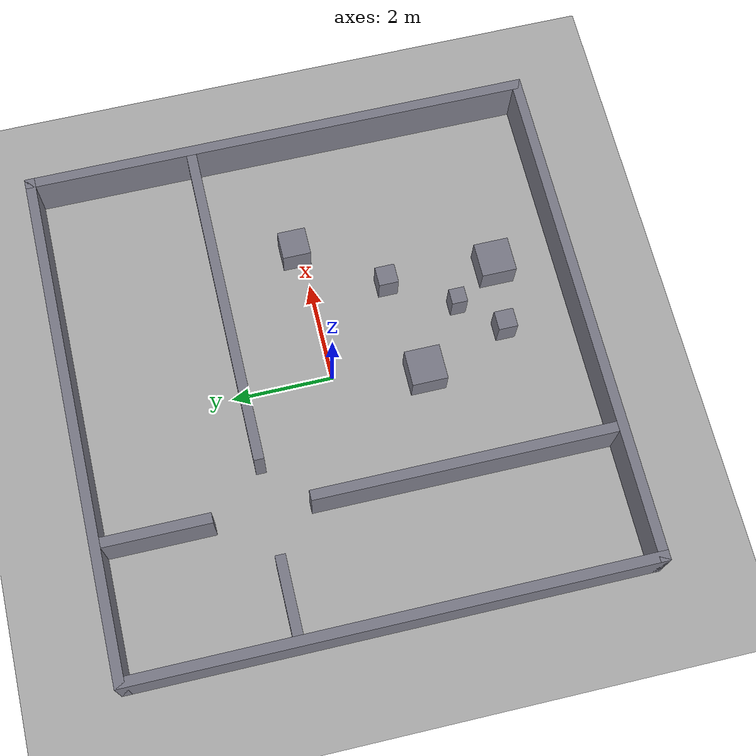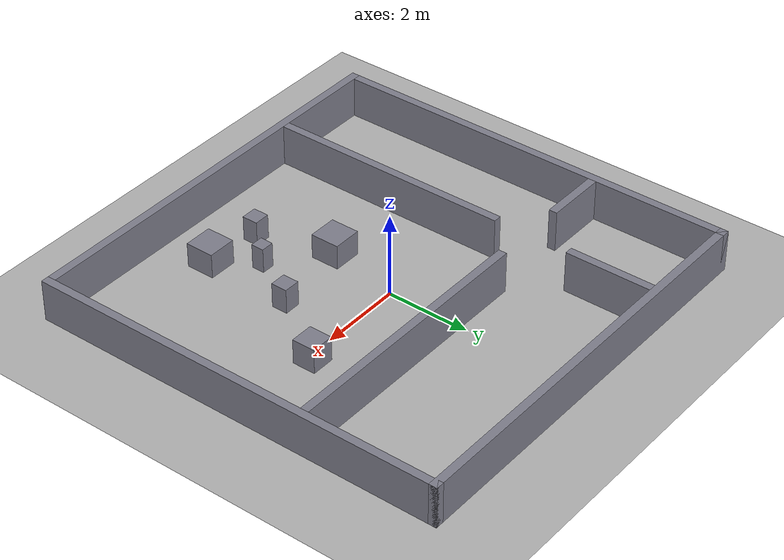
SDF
<?xml version="1.0"?>
<sdf version="1.10">
  <world name="scenario_11">
    <physics name="fast" type="ignored">
      <max_step_size>0.005</max_step_size>
      <real_time_factor>1.0</real_time_factor>
      <real_time_update_rate>200</real_time_update_rate>
    </physics>
    <plugin filename="gz-sim-physics-system" name="gz::sim::systems::Physics"/>
    <plugin filename="gz-sim-user-commands-system" name="gz::sim::systems::UserCommands"/>
    <plugin filename="gz-sim-scene-broadcaster-system" name="gz::sim::systems::SceneBroadcaster"/>
    <plugin filename="gz-sim-sensors-system" name="gz::sim::systems::Sensors">
      <render_engine>ogre2</render_engine>
    </plugin>
    <light type="directional" name="sun">
      <cast_shadows>false</cast_shadows>
      <pose>0 0 10 0 0 0</pose>
      <diffuse>0.9 0.9 0.9 1</diffuse>
      <direction>-0.5 0.2 -0.9</direction>
    </light>
    <model name="ground_plane">
      <static>true</static>
      <link name="link">
        <collision name="c"><geometry><plane><normal>0 0 1</normal><size>20 20</size></plane></geometry></collision>
        <visual name="v"><geometry><plane><normal>0 0 1</normal><size>20 20</size></plane></geometry>
          <material><ambient>0.7 0.7 0.7 1</ambient><diffuse>0.7 0.7 0.7 1</diffuse></material></visual>
      </link>
    </model>
    <model name="box_0">
      <static>true</static>
      <pose>0.0 5.0 0.5 0 0 0</pose>
      <link name="link">
        <collision name="c"><geometry><box><size>10.2 0.2 1.0</size></box></geometry></collision>
        <visual name="v"><geometry><box><size>10.2 0.2 1.0</size></box></geometry>
          <material><ambient>0.5 0.5 0.55 1</ambient><diffuse>0.5 0.5 0.55 1</diffuse></material></visual>
      </link>
    </model>
    <model name="box_1">
      <static>true</static>
      <pose>0.0 -5.0 0.5 0 0 0</pose>
      <link name="link">
        <collision name="c"><geometry><box><size>10.2 0.2 1.0</size></box></geometry></collision>
        <visual name="v"><geometry><box><size>10.2 0.2 1.0</size></box></geometry>
          <material><ambient>0.5 0.5 0.55 1</ambient><diffuse>0.5 0.5 0.55 1</diffuse></material></visual>
      </link>
    </model>
    <model name="box_2">
      <static>true</static>
      <pose>5.0 0.0 0.5 0 0 0</pose>
      <link name="link">
        <collision name="c"><geometry><box><size>0.2 10.2 1.0</size></box></geometry></collision>
        <visual name="v"><geometry><box><size>0.2 10.2 1.0</size></box></geometry>
          <material><ambient>0.5 0.5 0.55 1</ambient><diffuse>0.5 0.5 0.55 1</diffuse></material></visual>
      </link>
    </model>
    <model name="box_3">
      <static>true</static>
      <pose>-5.0 0.0 0.5 0 0 0</pose>
      <link name="link">
        <collision name="c"><geometry><box><size>0.2 10.2 1.0</size></box></geometry></collision>
        <visual name="v"><geometry><box><size>0.2 10.2 1.0</size></box></geometry>
          <material><ambient>0.5 0.5 0.55 1</ambient><diffuse>0.5 0.5 0.55 1</diffuse></material></visual>
      </link>
    </model>
    <model name="box_4">
      <static>true</static>
      <pose>-4.1535409893763 1.76 0.5 0 0 0</pose>
      <link name="link">
        <collision name="c"><geometry><box><size>1.4929180212474016 0.2 1.0</size></box></geometry></collision>
        <visual name="v"><geometry><box><size>1.4929180212474016 0.2 1.0</size></box></geometry>
          <material><ambient>0.5 0.5 0.55 1</ambient><diffuse>0.5 0.5 0.55 1</diffuse></material></visual>
      </link>
    </model>
    <model name="box_5">
      <static>true</static>
      <pose>1.6614590106237008 1.76 0.5 0 0 0</pose>
      <link name="link">
        <collision name="c"><geometry><box><size>6.477081978752599 0.2 1.0</size></box></geometry></collision>
        <visual name="v"><geometry><box><size>6.477081978752599 0.2 1.0</size></box></geometry>
          <material><ambient>0.5 0.5 0.55 1</ambient><diffuse>0.5 0.5 0.55 1</diffuse></material></visual>
      </link>
    </model>
    <model name="box_6">
      <static>true</static>
      <pose>-2.46 -1.956891279492765 0.5 0 0 0</pose>
      <link name="link">
        <collision name="c"><geometry><box><size>0.2 5.8862174410144705 1.0</size></box></geometry></collision>
        <visual name="v"><geometry><box><size>0.2 5.8862174410144705 1.0</size></box></geometry>
          <material><ambient>0.5 0.5 0.55 1</ambient><diffuse>0.5 0.5 0.55 1</diffuse></material></visual>
      </link>
    </model>
    <model name="box_7">
      <static>true</static>
      <pose>-2.46 3.8581087205072353 0.5 0 0 0</pose>
      <link name="link">
        <collision name="c"><geometry><box><size>0.2 2.08378255898553 1.0</size></box></geometry></collision>
        <visual name="v"><geometry><box><size>0.2 2.08378255898553 1.0</size></box></geometry>
          <material><ambient>0.5 0.5 0.55 1</ambient><diffuse>0.5 0.5 0.55 1</diffuse></material></visual>
      </link>
    </model>
    <model name="box_8">
      <static>true</static>
      <pose>1.55 -3.66 0.3 0 0 0</pose>
      <link name="link">
        <collision name="c"><geometry><box><size>0.69 0.69 0.6</size></box></geometry></collision>
        <visual name="v"><geometry><box><size>0.69 0.69 0.6</size></box></geometry>
          <material><ambient>0.5 0.5 0.55 1</ambient><diffuse>0.5 0.5 0.55 1</diffuse></material></visual>
      </link>
    </model>
    <model name="box_9">
      <static>true</static>
      <pose>0.92 -2.74 0.3 0 0 0</pose>
      <link name="link">
        <collision name="c"><geometry><box><size>0.31 0.31 0.6</size></box></geometry></collision>
        <visual name="v"><geometry><box><size>0.31 0.31 0.6</size></box></geometry>
          <material><ambient>0.5 0.5 0.55 1</ambient><diffuse>0.5 0.5 0.55 1</diffuse></material></visual>
      </link>
    </model>
    <model name="box_10">
      <static>true</static>
      <pose>0.23 -3.52 0.3 0 0 0</pose>
      <link name="link">
        <collision name="c"><geometry><box><size>0.38 0.38 0.6</size></box></geometry></collision>
        <visual name="v"><geometry><box><size>0.38 0.38 0.6</size></box></geometry>
          <material><ambient>0.5 0.5 0.55 1</ambient><diffuse>0.5 0.5 0.55 1</diffuse></material></visual>
      </link>
    </model>
    <model name="box_11">
      <static>true</static>
      <pose>2.74 0.15 0.3 0 0 0</pose>
      <link name="link">
        <collision name="c"><geometry><box><size>0.56 0.56 0.6</size></box></geometry></collision>
        <visual name="v"><geometry><box><size>0.56 0.56 0.6</size></box></geometry>
          <material><ambient>0.5 0.5 0.55 1</ambient><diffuse>0.5 0.5 0.55 1</diffuse></material></visual>
      </link>
    </model>
    <model name="box_12">
      <static>true</static>
      <pose>-0.34 -1.77 0.3 0 0 0</pose>
      <link name="link">
        <collision name="c"><geometry><box><size>0.7 0.7 0.6</size></box></geometry></collision>
        <visual name="v"><geometry><box><size>0.7 0.7 0.6</size></box></geometry>
          <material><ambient>0.5 0.5 0.55 1</ambient><diffuse>0.5 0.5 0.55 1</diffuse></material></visual>
      </link>
    </model>
    <model name="box_13">
      <static>true</static>
      <pose>1.66 -1.48 0.3 0 0 0</pose>
      <link name="link">
        <collision name="c"><geometry><box><size>0.39 0.39 0.6</size></box></geometry></collision>
        <visual name="v"><geometry><box><size>0.39 0.39 0.6</size></box></geometry>
          <material><ambient>0.5 0.5 0.55 1</ambient><diffuse>0.5 0.5 0.55 1</diffuse></material></visual>
      </link>
    </model>
  </world>
</sdf>
